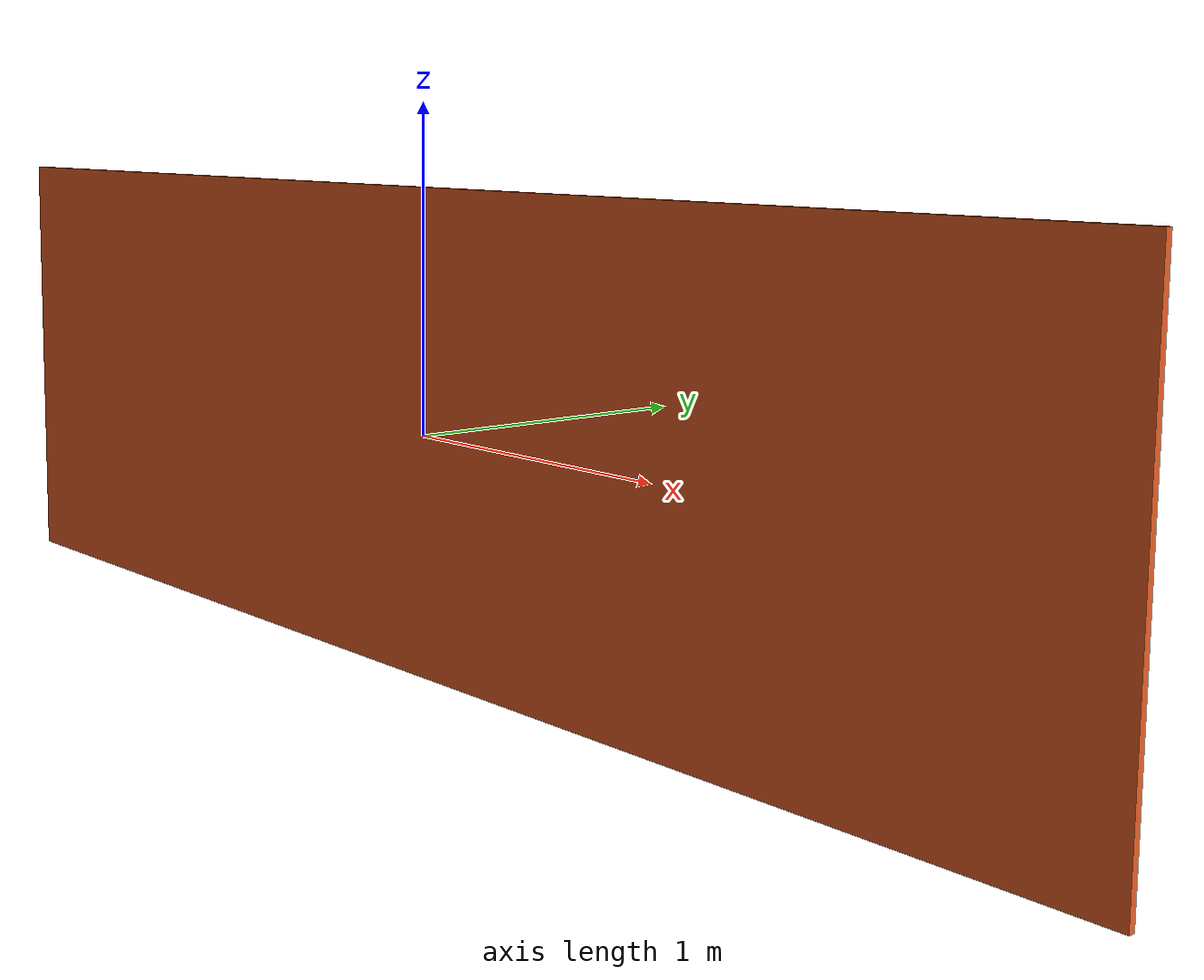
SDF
<?xml version="1.0" ?>
<sdf version="1.5">
  <model name="LaViRIA_panel_L">
    <link name="link">
    <static>true</static>
      <inertial>
        <pose>0 0 0.4 0 0 0</pose>
        <mass>102.4967667</mass>
        <inertia>
          <ixx>19.22138957</ixx>
          <iyy>232.7538146</iyy>
          <izz>213.538575</izz>
          <ixy>0</ixy>
          <ixz>0</ixz>
        </inertia>
      </inertial>
      <collision name="collision">
        <geometry>
          <mesh>
            <uri>model://LaViRIA_panel_L/meshes/LaViRIA_panel_L.dae</uri>
          </mesh>
        </geometry>
      </collision>
      <visual name="visual">
        <geometry>
          <mesh>
            <uri>model://LaViRIA_panel_L/meshes/LaViRIA_panel_L.dae</uri>
          </mesh>
        </geometry>
         <material>
          <ambient>0.8 0.32 0.12 1.0</ambient>
          <diffuse>0.8 0.32 0.12 1.0</diffuse>
          <specular>0.8 0.32 0.12 1.0</specular>
          <emissive>0.8 0.32 0.12 1.0</emissive>
        </material>
      </visual>
    </link>
  </model>
</sdf>
